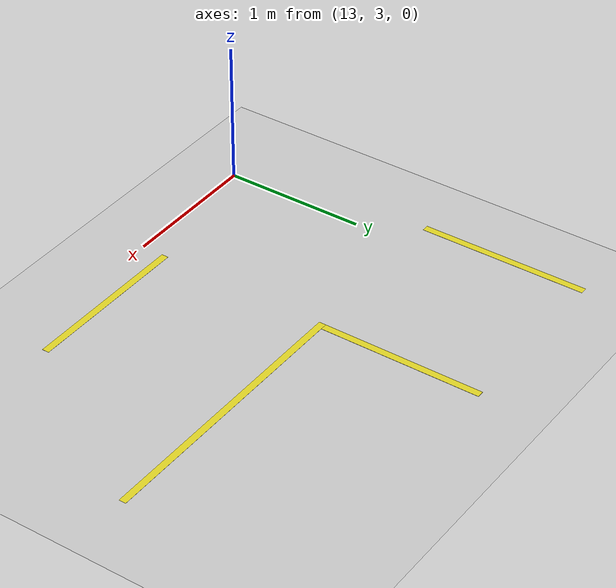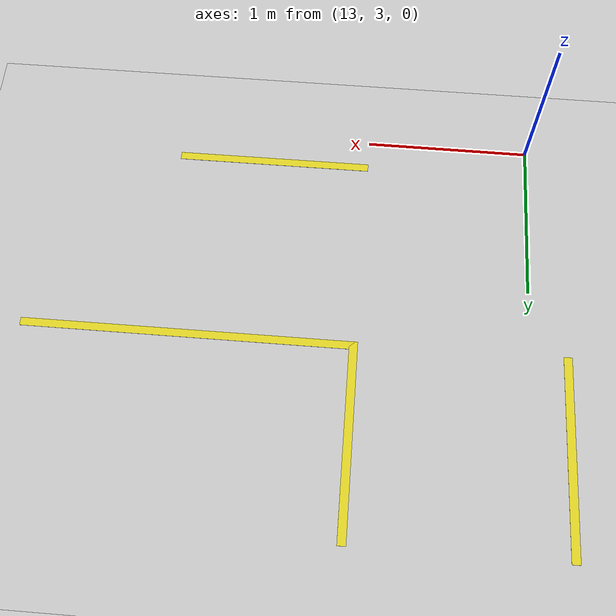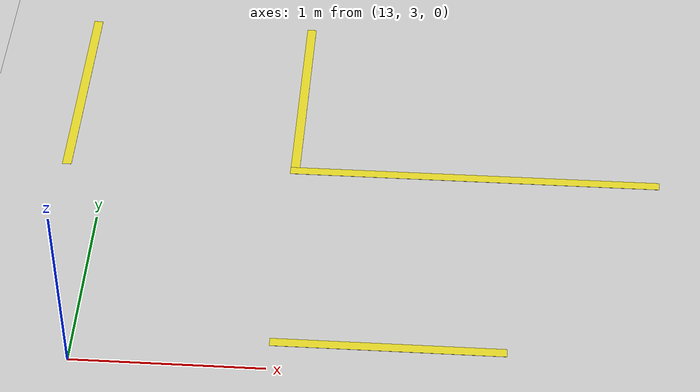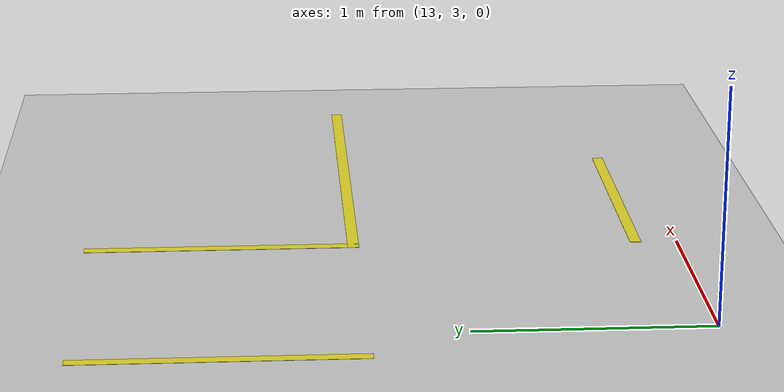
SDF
<sdf version="1.6">
 <world name="default">
  <model name="ground_plane">
   <static>1</static>
   <link name="link">
    <collision name="collision">
     <geometry><plane><normal>0 0 1</normal><size>100 100</size></plane></geometry>
     <surface><friction><ode><mu>100</mu><mu2>50</mu2></ode></friction></surface>
    </collision>
    <visual name="visual">
     <cast_shadows>0</cast_shadows>
     <geometry><plane><normal>0 0 1</normal><size>100 100</size></plane></geometry>
     <material>
      <script><uri>file://media/materials/scripts/gazebo.material</uri><name>Gazebo/Grey</name></script>
     </material>
    </visual>
   </link>
  </model>
  <model name="line120cm_4">
   <link name="link_1">
    <inertial>
     <mass>1</mass>
     <inertia>
      <ixx>0.166667</ixx>
      <ixy>0</ixy>
      <ixz>0</ixz>
      <iyy>0.166667</iyy>
      <iyz>0</iyz>
      <izz>0.166667</izz>
     </inertia>
    </inertial>
    <visual name="visual">
     <geometry><box><size>1.2 0.05 0.001</size></box></geometry>
     <material>
      <script><uri>file://media/materials/scripts/gazebo.material</uri><name>Gazebo/Yellow</name></script>
     </material>
    </visual>
    <collision name="collision">
     <geometry><box><size>1.2 0.05 1e-05</size></box></geometry>
     <surface>
      <friction>
       <ode><mu>1</mu><mu2>1</mu2><fdir1>0 0 0</fdir1><slip1>0</slip1><slip2>0</slip2></ode>
       <torsional>
        <coefficient>1</coefficient>
        <patch_radius>0</patch_radius>
        <surface_radius>0</surface_radius>
        <use_patch_radius>1</use_patch_radius>
        <ode><slip>0</slip></ode>
       </torsional>
      </friction>
      <bounce><restitution_coefficient>0</restitution_coefficient><threshold>1e+06</threshold></bounce>
      <contact>
       <collide_without_contact>0</collide_without_contact>
       <collide_without_contact_bitmask>1</collide_without_contact_bitmask>
       <collide_bitmask>1</collide_bitmask>
       <ode>
        <soft_cfm>0</soft_cfm>
        <soft_erp>0.2</soft_erp>
        <kp>1e+13</kp>
        <kd>1</kd>
        <max_vel>0.01</max_vel>
        <min_depth>0</min_depth>
       </ode>
       <bullet>
        <split_impulse>1</split_impulse>
        <split_impulse_penetration_threshold>-0.01</split_impulse_penetration_threshold>
        <soft_cfm>0</soft_cfm>
        <soft_erp>0.2</soft_erp>
        <kp>1e+13</kp>
        <kd>1</kd>
       </bullet>
      </contact>
     </surface>
    </collision>
   </link>
   <static>1</static>
   <pose>14.6 3.18 0 0 -0 0</pose>
  </model>
  <model name="line2m">
   <link name="link_0">
    <inertial>
     <mass>1</mass>
     <inertia>
      <ixx>0.166667</ixx>
      <ixy>0</ixy>
      <ixz>0</ixz>
      <iyy>0.166667</iyy>
      <iyz>0</iyz>
      <izz>0.166667</izz>
     </inertia>
    </inertial>
    <visual name="visual">
     <geometry><box><size>2 0.05 0.001</size></box></geometry>
     <material>
      <lighting>1</lighting>
      <script><uri>file://media/materials/scripts/gazebo.material</uri><name>Gazebo/Yellow</name></script>
     </material>
    </visual>
    <collision name="collision">
     <geometry><box><size>2 0.05 1e-05</size></box></geometry>
     <surface>
      <friction>
       <ode><mu>1</mu><mu2>1</mu2><fdir1>0 0 0</fdir1><slip1>0</slip1><slip2>0</slip2></ode>
       <torsional>
        <coefficient>1</coefficient>
        <patch_radius>0</patch_radius>
        <surface_radius>0</surface_radius>
        <use_patch_radius>1</use_patch_radius>
        <ode><slip>0</slip></ode>
       </torsional>
      </friction>
      <bounce><restitution_coefficient>0</restitution_coefficient><threshold>1e+06</threshold></bounce>
      <contact>
       <collide_without_contact>0</collide_without_contact>
       <collide_without_contact_bitmask>1</collide_without_contact_bitmask>
       <collide_bitmask>1</collide_bitmask>
       <ode>
        <soft_cfm>0</soft_cfm>
        <soft_erp>0.2</soft_erp>
        <kp>1e+13</kp>
        <kd>1</kd>
        <max_vel>0.01</max_vel>
        <min_depth>0</min_depth>
       </ode>
       <bullet>
        <split_impulse>1</split_impulse>
        <split_impulse_penetration_threshold>-0.01</split_impulse_penetration_threshold>
        <soft_cfm>0</soft_cfm>
        <soft_erp>0.2</soft_erp>
        <kp>1e+13</kp>
        <kd>1</kd>
       </bullet>
      </contact>
     </surface>
    </collision>
   </link>
   <static>1</static>
   <pose>15 4.425 0 0 -0 0</pose>
  </model>
  <model name="line120cm_9">
   <link name="link_1">
    <inertial>
     <mass>1</mass>
     <inertia>
      <ixx>0.166667</ixx>
      <ixy>0</ixy>
      <ixz>0</ixz>
      <iyy>0.166667</iyy>
      <iyz>0</iyz>
      <izz>0.166667</izz>
     </inertia>
    </inertial>
    <visual name="visual">
     <geometry><box><size>1.2 0.05 0.001</size></box></geometry>
     <material>
      <script><uri>file://media/materials/scripts/gazebo.material</uri><name>Gazebo/Yellow</name></script>
     </material>
    </visual>
    <collision name="collision">
     <geometry><box><size>1.2 0.05 1e-05</size></box></geometry>
     <surface>
      <friction>
       <ode><mu>1</mu><mu2>1</mu2><fdir1>0 0 0</fdir1><slip1>0</slip1><slip2>0</slip2></ode>
       <torsional>
        <coefficient>1</coefficient>
        <patch_radius>0</patch_radius>
        <surface_radius>0</surface_radius>
        <use_patch_radius>1</use_patch_radius>
        <ode><slip>0</slip></ode>
       </torsional>
      </friction>
      <bounce><restitution_coefficient>0</restitution_coefficient><threshold>1e+06</threshold></bounce>
      <contact>
       <collide_without_contact>0</collide_without_contact>
       <collide_without_contact_bitmask>1</collide_without_contact_bitmask>
       <collide_bitmask>1</collide_bitmask>
       <ode>
        <soft_cfm>0</soft_cfm>
        <soft_erp>0.2</soft_erp>
        <kp>1e+13</kp>
        <kd>1</kd>
        <max_vel>0.01</max_vel>
        <min_depth>0</min_depth>
       </ode>
       <bullet>
        <split_impulse>1</split_impulse>
        <split_impulse_penetration_threshold>-0.01</split_impulse_penetration_threshold>
        <soft_cfm>0</soft_cfm>
        <soft_erp>0.2</soft_erp>
        <kp>1e+13</kp>
        <kd>1</kd>
       </bullet>
      </contact>
     </surface>
    </collision>
   </link>
   <static>1</static>
   <pose>14.025 5 0 0 -0 1.5708</pose>
  </model>
  <model name="line120cm_11">
   <link name="link_1">
    <inertial>
     <mass>1</mass>
     <inertia>
      <ixx>0.166667</ixx>
      <ixy>0</ixy>
      <ixz>0</ixz>
      <iyy>0.166667</iyy>
      <iyz>0</iyz>
      <izz>0.166667</izz>
     </inertia>
    </inertial>
    <visual name="visual">
     <geometry><box><size>1.2 0.05 0.001</size></box></geometry>
     <material>
      <script><uri>file://media/materials/scripts/gazebo.material</uri><name>Gazebo/Yellow</name></script>
     </material>
    </visual>
    <collision name="collision">
     <geometry><box><size>1.2 0.05 1e-05</size></box></geometry>
     <surface>
      <friction>
       <ode><mu>1</mu><mu2>1</mu2><fdir1>0 0 0</fdir1><slip1>0</slip1><slip2>0</slip2></ode>
       <torsional>
        <coefficient>1</coefficient>
        <patch_radius>0</patch_radius>
        <surface_radius>0</surface_radius>
        <use_patch_radius>1</use_patch_radius>
        <ode><slip>0</slip></ode>
       </torsional>
      </friction>
      <bounce><restitution_coefficient>0</restitution_coefficient><threshold>1e+06</threshold></bounce>
      <contact>
       <collide_without_contact>0</collide_without_contact>
       <collide_without_contact_bitmask>1</collide_without_contact_bitmask>
       <collide_bitmask>1</collide_bitmask>
       <ode>
        <soft_cfm>0</soft_cfm>
        <soft_erp>0.2</soft_erp>
        <kp>1e+13</kp>
        <kd>1</kd>
        <max_vel>0.01</max_vel>
        <min_depth>0</min_depth>
       </ode>
       <bullet>
        <split_impulse>1</split_impulse>
        <split_impulse_penetration_threshold>-0.01</split_impulse_penetration_threshold>
        <soft_cfm>0</soft_cfm>
        <soft_erp>0.2</soft_erp>
        <kp>1e+13</kp>
        <kd>1</kd>
       </bullet>
      </contact>
     </surface>
    </collision>
   </link>
   <static>1</static>
   <pose>12.775 5 0 0 -0 1.5708</pose>
  </model>
 </world>
</sdf>
